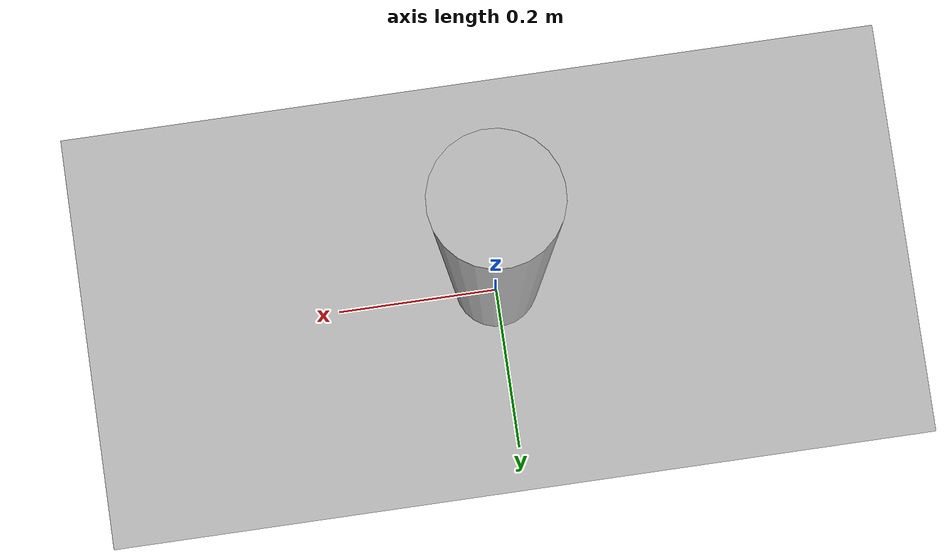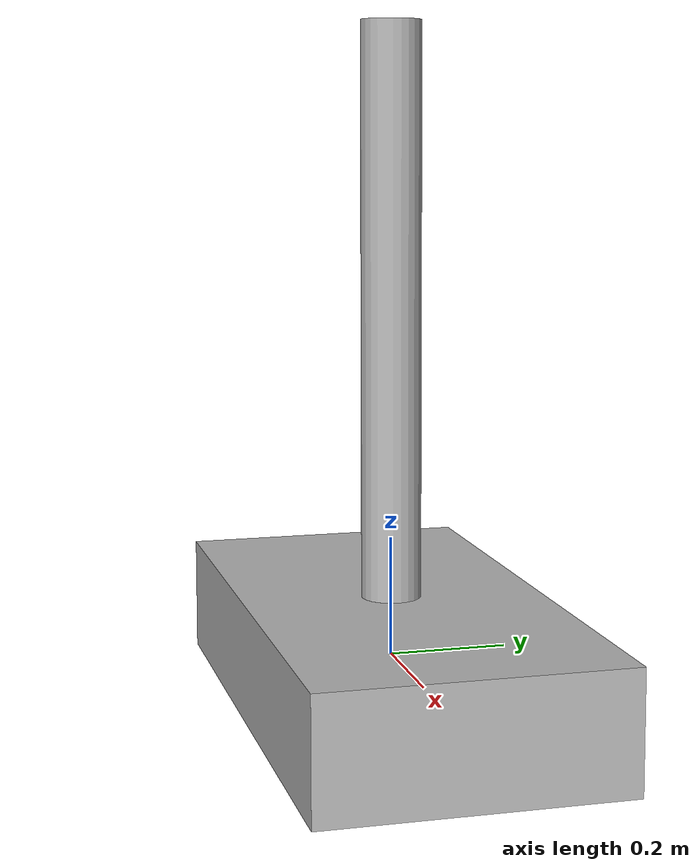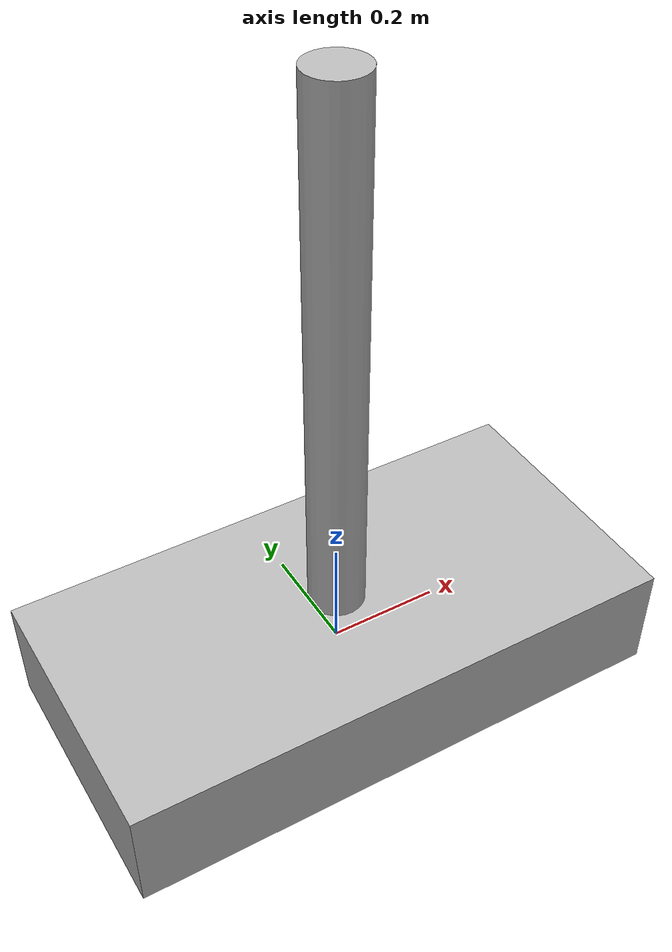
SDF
<?xml version="1.0" ?>
<sdf version="1.8">
  <model name="inverted_pendulum">

    <!-- New top-level link (canonical) -->
    <link name="base">
      <pose>0 0 0 0 0 0</pose>
      <inertial>
        <mass>0.01</mass> <!-- Nonzero mass to avoid other warnings -->
      </inertial>
    </link>

    <!-- Existing links/joints -->
    <link name="cart">
      <pose>0.0 0 0 0 0 0</pose>
      <inertial>
        <mass>2</mass>
        <inertia>
          <ixx>0.1</ixx>
          <iyy>0.1</iyy>
          <izz>0.1</izz>
        </inertia>
      </inertial>
      <visual name="visual_cart">
        <geometry>
          <box>
            <size>1 0.5 0.2</size>
          </box>
        </geometry>
      </visual>
      <collision name="collision_cart">
        <geometry>
          <box>
            <size>1 0.5 0.2</size>
          </box>
        </geometry>
      </collision>
    </link>

    <link name="pendulum">
      <pose>0.0 0 0.55 0 0 0.6</pose>
      <inertial>
        <mass>1</mass>
        <inertia>
          <ixx>0.05</ixx>
          <iyy>0.05</iyy>
          <izz>0.05</izz>
        </inertia>
      </inertial>
      <visual name="visual_pendulum">
        <geometry>
          <cylinder>
            <radius>0.05</radius>
            <length>1</length>
          </cylinder>
        </geometry>
      </visual>
      <collision name="collision_pendulum">
        <geometry>
          <cylinder>
            <radius>0.05</radius>
            <length>1</length>
          </cylinder>
        </geometry>
      </collision>
    </link>

    <!-- JOINT stuff -->
    <joint name="pendulum_joint" type="revolute">
      <parent>cart</parent>
      <child>pendulum</child>
      <axis>
        <xyz>0 1 0</xyz>
        <limit>
          <lower>-3.14</lower>
          <upper>3.14</upper>
        </limit>
      </axis>
    </joint>

    <joint name="cart_joint" type="prismatic">
      <parent>base</parent>
      <child>cart</child>
      <axis>
        <xyz>1 0 0</xyz>
        <limit>
          <lower>-8</lower>
          <upper>8</upper>
        </limit>
      </axis>
    </joint>

    <!-- ROS2 CONTROL stuff -->
    <ros2_control name="GazeboSimSystem" type="system">
      <hardware>
        <plugin>gz_ros2_control/GazeboSimSystem</plugin>
      </hardware>

      <joint name="cart_joint">
        <command_interface name="effort">
          <param name="min">-1000000</param>
          <param name="max">1000000</param>
        </command_interface>
        <state_interface name="position">
          <param name="initial_value">2.0</param>
        </state_interface>
        <state_interface name="velocity"/>
        <state_interface name="effort"/>
      </joint>

      <joint name="pendulum_joint">
        <state_interface name="position">
          <param name="initial_value">0.6</param>
        </state_interface>
        <state_interface name="velocity"/>
      </joint>
    </ros2_control>

    <!-- PLUGIN stuff -->
    <!-- Publish joint states on gazebo's /world/demo/model/inverted_pendulum/joint_state topic -->
    <plugin name="gz::sim::systems::JointStatePublisher" filename="gz-sim-joint-state-publisher-system">
      <joint_name>pendulum_joint</joint_name>
      <joint_name>cart_joint</joint_name>
    </plugin>

                                                 <!-- Legacy gazebo classic -->

    <!-- This plugin blocks sets up the controller manager, and we set the name controller_manager -->
    <!-- We also pass the cart_controllers.yaml file as a config file to set up the controller manager -->
                                                                        <!--  gazebo sim (harmonic) -->
    <plugin name="gz_ros2_control::GazeboSimROS2ControlPlugin" filename="libgz_ros2_control-system.so">
      <parameters>/workspaces/pendulum_challenge_ws/src/inverted_pendulum/inverted_pendulum_controller/config/cart_controllers.yaml</parameters>
    </plugin>

    <plugin filename="gz_ros2_control-system" name="gz_ros2_control::GazeboSimROS2ControlPlugin">
      <parameters>/workspaces/pendulum_challenge_ws/src/inverted_pendulum/inverted_pendulum_controller/config/cart_controllers.yaml</parameters>
    </plugin>

    <!-- Optionally include PID parameters if using force mode -->

    <!-- Keep the JointController plugin for pendulum_joint, but only for initial positioning -->
      <!-- Remove PID gains and force commands to prevent active control -->

    <!-- Add a plugin to apply forces to cart_joint -->

  </model>
</sdf>
